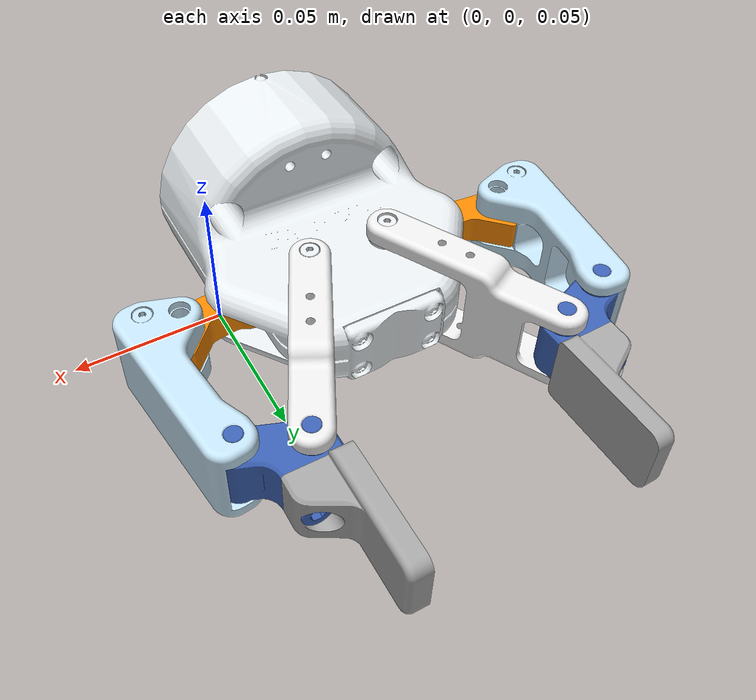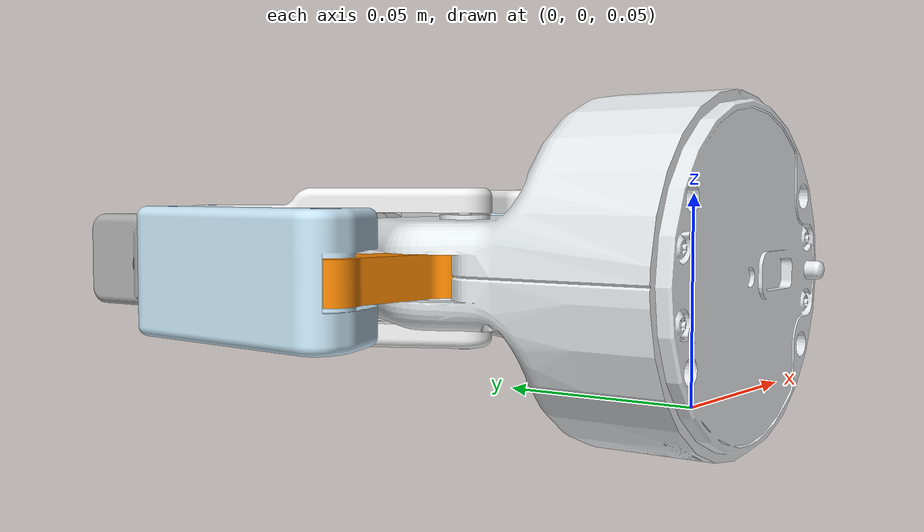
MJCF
<mujoco model="robot">
	<compiler angle="radian" autolimits="true" eulerseq="XYZ"/>
	<option integrator="implicitfast"/>
	<asset>

		<mesh file="defeatured_2f-85_pad_open_base.step.stl"/>

		<mesh file="defeatured_2f-85_pad_open_finger1.step.stl"/>

		<mesh file="defeatured_2f-85_pad_open_finger2.step.stl"/>

		<mesh file="defeatured_2f-85_pad_open_finger4.step.stl"/>

		<mesh file="defeatured_2f-85_pad_open_fingertips.step.stl"/>

		<mesh file="defeatured_2f-85_pad_open_finger3.step.stl"/>

		<material name="athens_gray" rgba="0.8980392156862745 0.9176470588235294 0.9294117647058824 1"/>

		<material name="tangerine" rgba="0.9725490196078431 0.5294117647058824 0.00392156862745098 1"/>

		<material name="blizzard_blue" rgba="0.7686274509803922 0.8862745098039215 0.9529411764705882 1"/>

		<material name="lapis_lazuli" rgba="0.23137254901960785 0.3803921568627451 0.7058823529411765 1"/>

		<material name="quick_silver" rgba="0.6470588235294118 0.6470588235294118 0.6470588235294118 1"/>

		<material name="mercury" rgba="0.9176470588235294 0.9176470588235294 0.9176470588235294 1"/>
	</asset>
	<default>

		<joint range="-3.14 3.14" axis="0 0 1"/>

		<geom/>

		<default class="joint_1">

			<joint type="slide"/>

		</default>
		<default class="joint_2">

			<joint type="hinge"/>

		</default>
	</default>
	<worldbody>
		<body name="base" pos="0 0 0" euler="0 0 0">
			<inertial pos="-0.03052799751152093 0.0049425032238779795 0.08338329699084644" mass="1.773202001091723" fullinertia="0.0013801004091691937 0.001055118006257516 0.0015721753115327532 3.3731884892081616e-09 -6.843047416598052e-08 -8.844783921903561e-07"/>
			<geom type="mesh" pos="-0.030527439877196902 -0.027380400064475154 0.0833605127626829" euler="0.0 -0.0 0.0" mesh="defeatured_2f-85_pad_open_base.step" material="athens_gray"/>
			<body name="defeatured_2f-85_pad_open_finger1.step" pos="-0.06112858430316816 0.027524116205170264 0.08806051276267304" euler="3.1239285222103217e-22 4.1072066650065426e-22 -0.23089479008851274">
				<joint class="joint_2" name="Revolute 21"/>
				<inertial pos="-0.012114025245269625 -0.0008825635070946274 -0.004500000000000002" mass="0.03702478822255647" fullinertia="9.64462394759307e-07 5.946880805810262e-06 6.207094560472298e-06 -4.2245223020935443e-07 -2.3457483389076717e-22 -1.4448875851759613e-22"/>
				<geom type="mesh" pos="0.03060114424019124 -0.054904516296453494 -0.004500000000000032" euler="5.552694887526551e-16 -0.0 3.056718603290575e-17" mesh="defeatured_2f-85_pad_open_finger1.step" material="tangerine"/>
				<body name="defeatured_2f-85_pad_open_finger2.step" pos="-0.03142485315715586 -0.004532229479096506 -0.009000000000000008" euler="-2.86363451347793e-22 -3.7136509070106034e-22 -0.018716797412721885">
					<joint class="joint_2" name="Revolute 11"/>
					<inertial pos="-0.003924470127533157 0.01858080462860411 0.004705531253730937" mass="0.11390989773633624" fullinertia="3.674478049571467e-05 1.4173525219100333e-05 3.163522173561953e-05 6.406730865594384e-06 -2.4726590051380875e-09 1.170705582681303e-08"/>
					<geom type="mesh" pos="0.06202599739734712 -0.050372286817357 0.004700000000009863" euler="-2.880248098420324e-28 -0.0 4.415130620809221e-17" mesh="defeatured_2f-85_pad_open_finger2.step" material="blizzard_blue"/>
					<body name="defeatured_2f-85_pad_open_finger4.step" pos="-0.006783355891963896 0.047033355025695285 0.018299999999999983" euler="2.833850676156566e-22 3.243356716346865e-22 0.2758717619737506">
						<joint class="joint_2" name="Revolute 31"/>
						<inertial pos="0.00943362859374805 0.004700478520750992 -0.013500000049163356" mass="0.056674572788017054" fullinertia="3.3081744012163823e-06 5.0855708135718505e-06 5.137268711528564e-06 -1.209155740828301e-06 8.220839723938627e-15 2.4826359907595606e-14"/>
						<geom type="mesh" pos="0.06880935324840973 -0.09740564186495611 -0.013499999999990117" euler="-7.596118006276859e-17 -0.0 2.069370982433178e-19" mesh="defeatured_2f-85_pad_open_finger4.step" material="lapis_lazuli"/>
						<body name="defeatured_2f-85_pad_open_fingertips.step" pos="0.006101727037762017 0.013015210606457911 -0.013499999999999984" euler="3.141592653589793 -1.1002522143808981e-18 1.6668297362635484e-16">
							<inertial pos="0.01353050151846466 -0.015116764609942268 -2.5057728591004485e-08" mass="0.057454889086897616" fullinertia="9.013175766009459e-06 3.222154754209611e-06 8.253256657590133e-06 1.3960463790975255e-06 -2.423483326977097e-12 1.9393951419518118e-11"/>
							<geom type="mesh" pos="0.06270762621064982 0.11042085247141481 -2.020605904817785e-14" euler="-3.141592653589793 -0.0 -1.4951993258136864e-19" mesh="defeatured_2f-85_pad_open_fingertips.step" material="quick_silver"/>
						</body>
					</body>
				</body>
			</body>
			<body name="defeatured_2f-85_pad_open_finger3.step" pos="-0.043227439877196905 0.03403959993552485 0.09906051276267305" euler="4.928527929664858e-23 4.158027783612048e-22 -0.24497186216435007">
				<joint class="joint_1" name="Cylindrical 21"/>
				<inertial pos="-0.019520660457961275 0.02200036833252042 -0.015300000200522265" mass="0.0793924089105096" fullinertia="2.506772181243261e-05 2.2400230965897807e-05 2.3273447482061028e-05 1.060261429146199e-05 1.3260132184020118e-13 -4.125554879342804e-14"/>
				<geom type="mesh" pos="0.012700000000000003 -0.06142 -0.015299999999990155" euler="-2.953937076191775e-17 -0.0 6.5239977065608e-18" mesh="defeatured_2f-85_pad_open_finger3.step" material="mercury"/>
			</body>
			<body name="defeatured_2f-85_pad_open_finger1.step_2" pos="7.37045486765512e-05 0.027524116205170236 0.08336051276267305" euler="3.141592653589793 -1.6379652789077654e-15 -2.879411418201147">
				<joint class="joint_2" name="Revolute 51"/>
				<inertial pos="-0.012114025245269618 -0.0008825635070946188 -2.4997811173131642e-18" mass="0.03702478822255647" fullinertia="9.64462394759307e-07 5.946880805810264e-06 6.207094560472298e-06 -4.2245223020935453e-07 1.023630221055879e-21 -4.3127223183728355e-23"/>
				<geom type="mesh" pos="0.030601144240191246 -0.054904516296453494 -4.163336342344337e-17" euler="5.553793662240409e-16 2.4000376779406606e-16 -6.700501841877085e-18" mesh="defeatured_2f-85_pad_open_finger1.step" material="tangerine"/>
				<body name="defeatured_2f-85_pad_open_finger2.step_2" pos="-0.03142485315715587 -0.004532229479096487 -0.004500000000000004" euler="-4.474589846259644e-19 2.4000360878088193e-16 -0.002320368938070367">
					<joint class="joint_2" name="Revolute 61"/>
					<inertial pos="-0.003924470127533157 0.018580804628604102 0.004705531253730937" mass="0.11390989773633624" fullinertia="3.674478049571467e-05 1.417352521910033e-05 3.163522173561953e-05 6.406730865594384e-06 -2.472659005138087e-09 1.1707055826813028e-08"/>
					<geom type="mesh" pos="0.06202599739734712 -0.05037228681735699 0.004700000000009863" euler="-2.879231614730963e-28 -8.954236365520967e-32 3.570759635520736e-17" mesh="defeatured_2f-85_pad_open_finger2.step" material="blizzard_blue"/>
					<body name="defeatured_2f-85_pad_open_finger4.step_3" pos="-0.006783355891963896 0.04703335502569529 -0.008900000000000019" euler="-3.141592653589793 -1.7663535488470928e-22 0.26774429673643557">
						<joint class="joint_2" name="Revolute 71"/>
						<inertial pos="0.009433628593748022 -0.004700478520751006 -0.013499999950836622" mass="0.056674572788017054" fullinertia="3.308174401216384e-06 5.085570813571849e-06 5.137268711528564e-06 1.209155740828301e-06 -8.220839997065114e-15 2.4826360088150788e-14"/>
						<geom type="mesh" pos="0.06880935324840971 0.09740564186495608 -0.013500000000009851" euler="3.141592653589793 -1.4932334864727236e-16 3.415672373668205e-19" mesh="defeatured_2f-85_pad_open_finger4.step" material="lapis_lazuli"/>
						<body name="defeatured_2f-85_pad_open_fingertips.step_3" pos="0.006101727037761993 -0.013015210606457897 -0.013499999999999984" euler="-1.1912208418748606e-16 2.017716978438626e-15 3.4156723736646635e-19">
							<inertial pos="0.013530501518464647 -0.01511676460994224 -2.5057728591004485e-08" mass="0.057454889086897616" fullinertia="9.013175766009462e-06 3.22215475420961e-06 8.253256657590133e-06 1.3960463790975255e-06 -2.4234833269770974e-12 1.9393951419518115e-11"/>
							<geom type="mesh" pos="0.06270762621064982 0.11042085247141481 -2.020605904817785e-14" euler="-3.141592653589793 -2.4651903288156613e-32 3.4156723736648016e-19" mesh="defeatured_2f-85_pad_open_fingertips.step" material="quick_silver"/>
						</body>
					</body>
				</body>
			</body>
			<body name="defeatured_2f-85_pad_open_finger3.step_2" pos="-0.017827439877197107 0.03403959993552485 0.09846051276267312" euler="-1.7542426112317116e-15 1.0819382389514748e-15 -1.2006111498958847">
				<joint class="joint_1" name="Cylindrical 11"/>
				<inertial pos="-0.019520660457961282 0.022000368332520392 -0.015300000200522251" mass="0.0793924089105096" fullinertia="2.506772181243261e-05 2.24002309658978e-05 2.3273447482061028e-05 1.0602614291461986e-05 1.3260132184020118e-13 -4.1255548793428037e-14"/>
				<geom type="mesh" pos="0.012700000000000003 -0.061420000000000016 -0.015299999999990141" euler="-2.953937076191795e-17 -0.0 -8.915604857883252e-18" mesh="defeatured_2f-85_pad_open_finger3.step" material="mercury"/>
			</body>
		</body>
	</worldbody>
	<equality>
		<connect anchor="-0.038207917224887415 0.042500324249776594 -0.0017000000000000348" body1="defeatured_2f-85_pad_open_finger3.step" body2="defeatured_2f-85_pad_open_finger4.step"/>
		<connect anchor="-0.03820791722488738 0.04250032424977658 -0.001700000000000021" body1="defeatured_2f-85_pad_open_finger3.step_2" body2="defeatured_2f-85_pad_open_finger4.step_3"/>
	</equality>
</mujoco>
